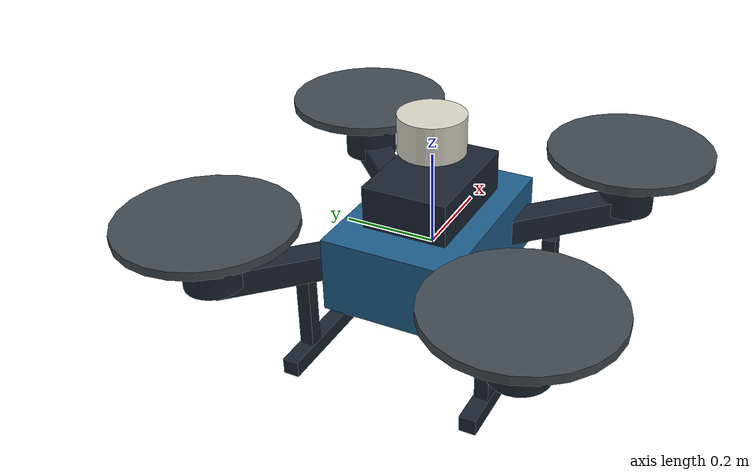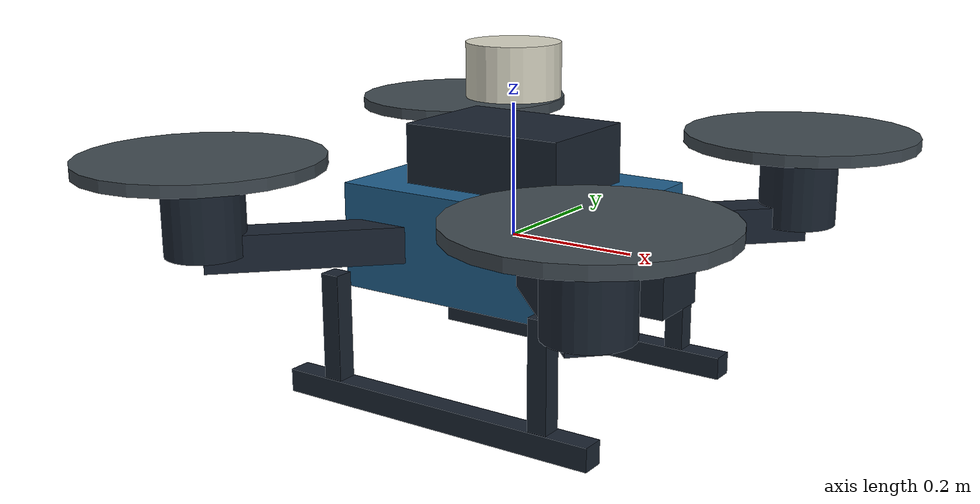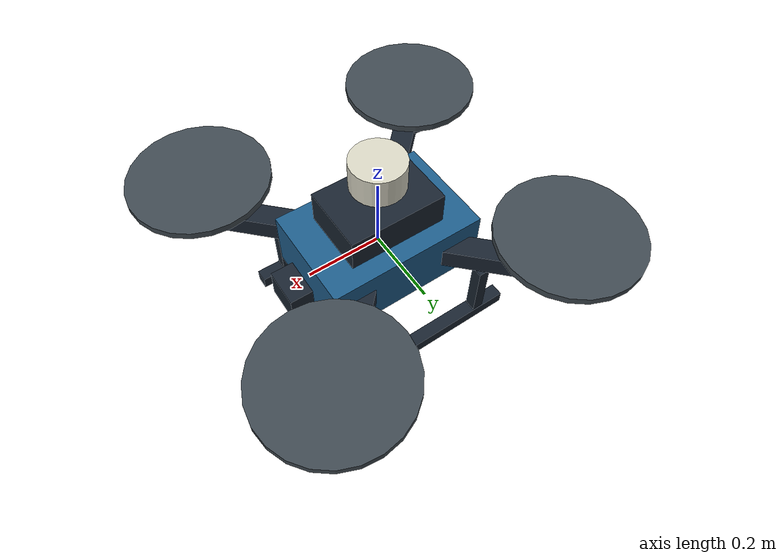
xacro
<?xml version="1.0"?>
<!-- 与原 quadrotor/model.sdf 相同的机械几何；RSP 单独展开此文件。 -->
<robot name="quadrotor">
  <link name="base_link">
    <visual name="body">
      <origin xyz="0 0 0" rpy="0 0 0" />
      <geometry>
        <box size="0.42 0.28 0.16" />
      </geometry>
      <material name="material_body">
        <color rgba="0.12 0.37 0.55 1" />
      </material>
    </visual>
    <visual name="battery">
      <origin xyz="0 0 0.12" rpy="0 0 0" />
      <geometry>
        <box size="0.26 0.18 0.1" />
      </geometry>
      <material name="material_battery">
        <color rgba="0.1 0.14 0.19 1" />
      </material>
    </visual>
    <visual name="motor_-0.32_-0.32_arm">
      <origin xyz="-0.16 -0.16 0" rpy="0 0 -2.3561945" />
      <geometry>
        <box size="0.46 0.06 0.055" />
      </geometry>
      <material name="material_motor_-0.32_-0.32_arm">
        <color rgba="0.1 0.14 0.19 1" />
      </material>
    </visual>
    <visual name="motor_-0.32_-0.32">
      <origin xyz="-0.32 -0.32 0.055" rpy="0 0 0" />
      <geometry>
        <cylinder radius="0.06" length="0.12" />
      </geometry>
      <material name="material_motor_-0.32_-0.32">
        <color rgba="0.1 0.14 0.19 1" />
      </material>
    </visual>
    <visual name="motor_-0.32_-0.32_rotor">
      <origin xyz="-0.32 -0.32 0.13" rpy="0 0 0" />
      <geometry>
        <cylinder radius="0.18" length="0.018" />
      </geometry>
      <material name="material_motor_-0.32_-0.32_rotor">
        <color rgba="0.25 0.29 0.32 1" />
      </material>
    </visual>
    <visual name="motor_-0.32_0.32_arm">
      <origin xyz="-0.16 0.16 0" rpy="0 0 2.3561945" />
      <geometry>
        <box size="0.46 0.06 0.055" />
      </geometry>
      <material name="material_motor_-0.32_0.32_arm">
        <color rgba="0.1 0.14 0.19 1" />
      </material>
    </visual>
    <visual name="motor_-0.32_0.32">
      <origin xyz="-0.32 0.32 0.055" rpy="0 0 0" />
      <geometry>
        <cylinder radius="0.06" length="0.12" />
      </geometry>
      <material name="material_motor_-0.32_0.32">
        <color rgba="0.1 0.14 0.19 1" />
      </material>
    </visual>
    <visual name="motor_-0.32_0.32_rotor">
      <origin xyz="-0.32 0.32 0.13" rpy="0 0 0" />
      <geometry>
        <cylinder radius="0.18" length="0.018" />
      </geometry>
      <material name="material_motor_-0.32_0.32_rotor">
        <color rgba="0.25 0.29 0.32 1" />
      </material>
    </visual>
    <visual name="motor_0.32_-0.32_arm">
      <origin xyz="0.16 -0.16 0" rpy="0 0 -0.78539816" />
      <geometry>
        <box size="0.46 0.06 0.055" />
      </geometry>
      <material name="material_motor_0.32_-0.32_arm">
        <color rgba="0.1 0.14 0.19 1" />
      </material>
    </visual>
    <visual name="motor_0.32_-0.32">
      <origin xyz="0.32 -0.32 0.055" rpy="0 0 0" />
      <geometry>
        <cylinder radius="0.06" length="0.12" />
      </geometry>
      <material name="material_motor_0.32_-0.32">
        <color rgba="0.1 0.14 0.19 1" />
      </material>
    </visual>
    <visual name="motor_0.32_-0.32_rotor">
      <origin xyz="0.32 -0.32 0.13" rpy="0 0 0" />
      <geometry>
        <cylinder radius="0.18" length="0.018" />
      </geometry>
      <material name="material_motor_0.32_-0.32_rotor">
        <color rgba="0.25 0.29 0.32 1" />
      </material>
    </visual>
    <visual name="motor_0.32_0.32_arm">
      <origin xyz="0.16 0.16 0" rpy="0 0 0.78539816" />
      <geometry>
        <box size="0.46 0.06 0.055" />
      </geometry>
      <material name="material_motor_0.32_0.32_arm">
        <color rgba="0.1 0.14 0.19 1" />
      </material>
    </visual>
    <visual name="motor_0.32_0.32">
      <origin xyz="0.32 0.32 0.055" rpy="0 0 0" />
      <geometry>
        <cylinder radius="0.06" length="0.12" />
      </geometry>
      <material name="material_motor_0.32_0.32">
        <color rgba="0.1 0.14 0.19 1" />
      </material>
    </visual>
    <visual name="motor_0.32_0.32_rotor">
      <origin xyz="0.32 0.32 0.13" rpy="0 0 0" />
      <geometry>
        <cylinder radius="0.18" length="0.018" />
      </geometry>
      <material name="material_motor_0.32_0.32_rotor">
        <color rgba="0.25 0.29 0.32 1" />
      </material>
    </visual>
    <visual name="skid-0.2">
      <origin xyz="0 -0.2 -0.22" rpy="0 0 0" />
      <geometry>
        <box size="0.52 0.035 0.035" />
      </geometry>
      <material name="material_skid-0.2">
        <color rgba="0.1 0.14 0.19 1" />
      </material>
    </visual>
    <visual name="leg-0.18_-0.2">
      <origin xyz="-0.18 -0.2 -0.13" rpy="0 0 0" />
      <geometry>
        <box size="0.03 0.03 0.18" />
      </geometry>
      <material name="material_leg-0.18_-0.2">
        <color rgba="0.1 0.14 0.19 1" />
      </material>
    </visual>
    <visual name="leg0.18_-0.2">
      <origin xyz="0.18 -0.2 -0.13" rpy="0 0 0" />
      <geometry>
        <box size="0.03 0.03 0.18" />
      </geometry>
      <material name="material_leg0.18_-0.2">
        <color rgba="0.1 0.14 0.19 1" />
      </material>
    </visual>
    <visual name="skid0.2">
      <origin xyz="0 0.2 -0.22" rpy="0 0 0" />
      <geometry>
        <box size="0.52 0.035 0.035" />
      </geometry>
      <material name="material_skid0.2">
        <color rgba="0.1 0.14 0.19 1" />
      </material>
    </visual>
    <visual name="leg-0.18_0.2">
      <origin xyz="-0.18 0.2 -0.13" rpy="0 0 0" />
      <geometry>
        <box size="0.03 0.03 0.18" />
      </geometry>
      <material name="material_leg-0.18_0.2">
        <color rgba="0.1 0.14 0.19 1" />
      </material>
    </visual>
    <visual name="leg0.18_0.2">
      <origin xyz="0.18 0.2 -0.13" rpy="0 0 0" />
      <geometry>
        <box size="0.03 0.03 0.18" />
      </geometry>
      <material name="material_leg0.18_0.2">
        <color rgba="0.1 0.14 0.19 1" />
      </material>
    </visual>
    <collision name="body">
      <origin xyz="0 0 0" rpy="0 0 0" />
      <geometry>
        <box size="0.42 0.28 0.16" />
      </geometry>
    </collision>
    <collision name="motor_-0.32_-0.32_arm">
      <origin xyz="-0.16 -0.16 0" rpy="0 0 -2.3561945" />
      <geometry>
        <box size="0.46 0.06 0.055" />
      </geometry>
    </collision>
    <collision name="motor_-0.32_-0.32">
      <origin xyz="-0.32 -0.32 0.055" rpy="0 0 0" />
      <geometry>
        <cylinder radius="0.06" length="0.12" />
      </geometry>
    </collision>
    <collision name="motor_-0.32_-0.32_rotor">
      <origin xyz="-0.32 -0.32 0.13" rpy="0 0 0" />
      <geometry>
        <cylinder radius="0.18" length="0.018" />
      </geometry>
    </collision>
    <collision name="motor_-0.32_0.32_arm">
      <origin xyz="-0.16 0.16 0" rpy="0 0 2.3561945" />
      <geometry>
        <box size="0.46 0.06 0.055" />
      </geometry>
    </collision>
    <collision name="motor_-0.32_0.32">
      <origin xyz="-0.32 0.32 0.055" rpy="0 0 0" />
      <geometry>
        <cylinder radius="0.06" length="0.12" />
      </geometry>
    </collision>
    <collision name="motor_-0.32_0.32_rotor">
      <origin xyz="-0.32 0.32 0.13" rpy="0 0 0" />
      <geometry>
        <cylinder radius="0.18" length="0.018" />
      </geometry>
    </collision>
    <collision name="motor_0.32_-0.32_arm">
      <origin xyz="0.16 -0.16 0" rpy="0 0 -0.78539816" />
      <geometry>
        <box size="0.46 0.06 0.055" />
      </geometry>
    </collision>
    <collision name="motor_0.32_-0.32">
      <origin xyz="0.32 -0.32 0.055" rpy="0 0 0" />
      <geometry>
        <cylinder radius="0.06" length="0.12" />
      </geometry>
    </collision>
    <collision name="motor_0.32_-0.32_rotor">
      <origin xyz="0.32 -0.32 0.13" rpy="0 0 0" />
      <geometry>
        <cylinder radius="0.18" length="0.018" />
      </geometry>
    </collision>
    <collision name="motor_0.32_0.32_arm">
      <origin xyz="0.16 0.16 0" rpy="0 0 0.78539816" />
      <geometry>
        <box size="0.46 0.06 0.055" />
      </geometry>
    </collision>
    <collision name="motor_0.32_0.32">
      <origin xyz="0.32 0.32 0.055" rpy="0 0 0" />
      <geometry>
        <cylinder radius="0.06" length="0.12" />
      </geometry>
    </collision>
    <collision name="motor_0.32_0.32_rotor">
      <origin xyz="0.32 0.32 0.13" rpy="0 0 0" />
      <geometry>
        <cylinder radius="0.18" length="0.018" />
      </geometry>
    </collision>
    <collision name="skid-0.2">
      <origin xyz="0 -0.2 -0.22" rpy="0 0 0" />
      <geometry>
        <box size="0.52 0.035 0.035" />
      </geometry>
    </collision>
    <collision name="leg-0.18_-0.2">
      <origin xyz="-0.18 -0.2 -0.13" rpy="0 0 0" />
      <geometry>
        <box size="0.03 0.03 0.18" />
      </geometry>
    </collision>
    <collision name="leg0.18_-0.2">
      <origin xyz="0.18 -0.2 -0.13" rpy="0 0 0" />
      <geometry>
        <box size="0.03 0.03 0.18" />
      </geometry>
    </collision>
    <collision name="skid0.2">
      <origin xyz="0 0.2 -0.22" rpy="0 0 0" />
      <geometry>
        <box size="0.52 0.035 0.035" />
      </geometry>
    </collision>
    <collision name="leg-0.18_0.2">
      <origin xyz="-0.18 0.2 -0.13" rpy="0 0 0" />
      <geometry>
        <box size="0.03 0.03 0.18" />
      </geometry>
    </collision>
    <collision name="leg0.18_0.2">
      <origin xyz="0.18 0.2 -0.13" rpy="0 0 0" />
      <geometry>
        <box size="0.03 0.03 0.18" />
      </geometry>
    </collision>
  </link>
  <link name="lidar_link">
    <visual name="lidar">
      <origin xyz="0 0 0" rpy="0 0 0" />
      <geometry>
        <cylinder radius="0.07" length="0.08" />
      </geometry>
      <material name="material_lidar">
        <color rgba="0.85 0.84 0.77 1" />
      </material>
    </visual>
    <collision name="lidar">
      <origin xyz="0 0 0" rpy="0 0 0" />
      <geometry>
        <cylinder radius="0.07" length="0.08" />
      </geometry>
    </collision>
  </link>
  <link name="imu_link" />
  <link name="camera_optical_frame">
    <visual name="camera">
      <origin xyz="0 0 0" rpy="0 0 0" />
      <geometry>
        <box size="0.1 0.08 0.06" />
      </geometry>
      <material name="material_camera">
        <color rgba="0.1 0.14 0.19 1" />
      </material>
    </visual>
    <collision name="camera">
      <origin xyz="0 0 0" rpy="0 0 0" />
      <geometry>
        <box size="0.1 0.08 0.06" />
      </geometry>
    </collision>
  </link>
  <joint name="lidar_link_joint" type="fixed">
    <parent link="base_link" />
    <child link="lidar_link" />
    <origin xyz="0 0 0.25" rpy="0 0 0" />
  </joint>
  <joint name="imu_link_joint" type="fixed">
    <parent link="base_link" />
    <child link="imu_link" />
    <origin xyz="0 0 0" rpy="0 0 0" />
  </joint>
  <joint name="camera_optical_frame_joint" type="fixed">
    <parent link="base_link" />
    <child link="camera_optical_frame" />
    <origin xyz="0.25 0 -0.03" rpy="-1.5707963 0 -1.5707963" />
  </joint>
</robot>
